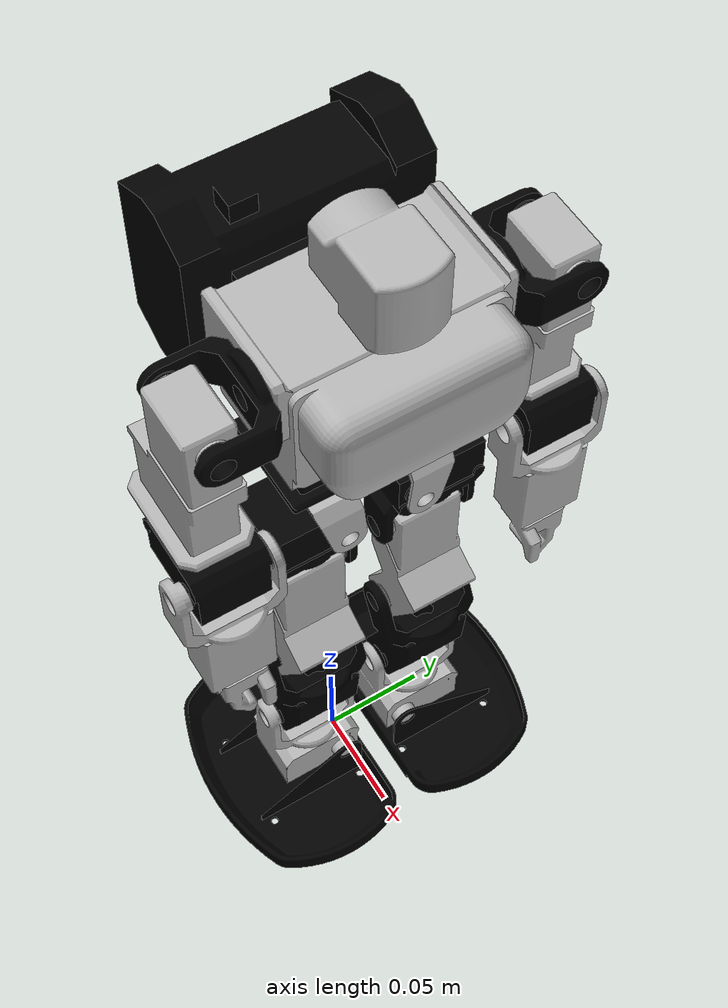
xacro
<?xml version="1.0" ?>
<robot xmlns:xacro="http://www.ros.org/wiki/xacro" name="$(arg robot_name)">
  <xacro:arg name="robot_name" default="khr3"/>
  <xacro:arg name="use_sim" default="false"/>

  <xacro:property name="prefix" value="$(arg robot_name)_"/>

<xacro:include filename="$(find khr3_description)/xacro/materials.xacro" />
<xacro:if value="$(arg use_sim)">
  <xacro:include filename="$(find khr3_description)/xacro/khr3_001.simulation.xacro" />
</xacro:if>

 <!-- Description of robot -->
<link name="${prefix}base_footprint">
  <inertial>
    <origin xyz="0 0 0" rpy="0 0 0"/>
    <mass value="0.001"/>
    <inertia ixx="0.00001" ixy="0.0" ixz="0.0" iyy="0.00001" iyz="0.0" izz="0.00001"/>
  </inertial>
</link>

<link name="${prefix}base_link">
  <inertial>
    <origin xyz="-0.0004860989233068058 0.009532810756286874 0.27413898086600197" rpy="0 0 0"/>
    <mass value="0.13408213174666955"/>
    <inertia ixx="6.3e-05" iyy="3.6e-05" izz="6.8e-05" ixy="0.0" iyz="-0.0" ixz="-0.0"/>
  </inertial>
  <visual>
    <origin xyz="0 0 0" rpy="0 0 0"/>
    <geometry>
      <mesh filename="file://$(find khr3_description)/meshes/base_link.stl" scale="0.001 0.001 0.001"/>
    </geometry>
    <material name="black"/>
  </visual>
  <collision>
    <origin xyz="0 0 0" rpy="0 0 0"/>
    <geometry>
      <mesh filename="file://$(find khr3_description)/meshes/base_link.stl" scale="0.001 0.001 0.001"/>
    </geometry>
  </collision>
</link>

<link name="${prefix}c_chest_c">
  <inertial>
    <origin xyz="-9.07564737343998e-05 -4.299695898109246e-08 0.04371354326547944" rpy="0 0 0"/>
    <mass value="0.1751250442918052"/>
    <inertia ixx="0.000158" iyy="6.6e-05" izz="0.000176" ixy="0.0" iyz="-0.0" ixz="0.0"/>
  </inertial>
  <visual>
    <origin xyz="-0.010956 -0.009542 -0.29475" rpy="0 0 0"/>
    <geometry>
      <mesh filename="file://$(find khr3_description)/meshes/c_chest_c_1.stl" scale="0.001 0.001 0.001"/>
    </geometry>
    <material name="silver"/>
  </visual>
  <collision>
    <origin xyz="-0.010956 -0.009542 -0.29475" rpy="0 0 0"/>
    <geometry>
      <mesh filename="file://$(find khr3_description)/meshes/c_chest_c_1.stl" scale="0.001 0.001 0.001"/>
    </geometry>
  </collision>
</link>

<link name="${prefix}c_chest_b">
  <inertial>
    <origin xyz="-0.027362562372520854 2.840518613928325e-06 0.004477857770456339" rpy="0 0 0"/>
    <mass value="0.08659748664099903"/>
    <inertia ixx="0.000118" iyy="5.2e-05" izz="9.8e-05" ixy="0.0" iyz="0.0" ixz="0.0"/>
  </inertial>
  <visual>
    <origin xyz="0.015044 -0.009542 -0.326" rpy="0 0 0"/>
    <geometry>
      <mesh filename="file://$(find khr3_description)/meshes/c_chest_b_1.stl" scale="0.001 0.001 0.001"/>
    </geometry>
    <material name="black"/>
  </visual>
  <collision>
    <origin xyz="0.015044 -0.009542 -0.326" rpy="0 0 0"/>
    <geometry>
      <mesh filename="file://$(find khr3_description)/meshes/c_chest_b_1.stl" scale="0.001 0.001 0.001"/>
    </geometry>
  </collision>
</link>

<link name="${prefix}c_chest_a">
  <inertial>
    <origin xyz="0.004546800382866728 -4.1161282904669805e-08 -0.0024788373011201403" rpy="0 0 0"/>
    <mass value="0.033763915303500654"/>
    <inertia ixx="3.4e-05" iyy="1.9e-05" izz="3.6e-05" ixy="-0.0" iyz="0.0" ixz="-3e-06"/>
  </inertial>
  <visual>
    <origin xyz="-0.036956 -0.009542 -0.326" rpy="0 0 0"/>
    <geometry>
      <mesh filename="file://$(find khr3_description)/meshes/c_chest_a_1.stl" scale="0.001 0.001 0.001"/>
    </geometry>
    <material name="silver"/>
  </visual>
  <collision>
    <origin xyz="-0.036956 -0.009542 -0.326" rpy="0 0 0"/>
    <geometry>
      <mesh filename="file://$(find khr3_description)/meshes/c_chest_a_1.stl" scale="0.001 0.001 0.001"/>
    </geometry>
  </collision>
</link>

<link name="${prefix}c_head_a">
  <inertial>
    <origin xyz="0.003079433021973575 -4.3073247395913894e-08 0.022888877386975093" rpy="0 0 0"/>
    <mass value="0.012778861662402228"/>
    <inertia ixx="2e-06" iyy="4e-06" izz="3e-06" ixy="-0.0" iyz="0.0" ixz="-0.0"/>
  </inertial>
  <visual>
    <origin xyz="-0.022456 -0.009542 -0.35425" rpy="0 0 0"/>
    <geometry>
      <mesh filename="file://$(find khr3_description)/meshes/c_head_a_1.stl" scale="0.001 0.001 0.001"/>
    </geometry>
    <material name="silver"/>
  </visual>
  <collision>
    <origin xyz="-0.022456 -0.009542 -0.35425" rpy="0 0 0"/>
    <geometry>
      <mesh filename="file://$(find khr3_description)/meshes/c_head_a_1.stl" scale="0.001 0.001 0.001"/>
    </geometry>
  </collision>
</link>

<link name="${prefix}l_shoulder">
  <inertial>
    <origin xyz="0.00016940373751364937 0.008747288709026461 3.2529534621517087e-14" rpy="0 0 0"/>
    <mass value="0.012120367829212707"/>
    <inertia ixx="1e-06" iyy="4e-06" izz="4e-06" ixy="-0.0" iyz="0.0" ixz="0.0"/>
  </inertial>
  <visual>
    <origin xyz="-0.022456 -0.058442 -0.3425" rpy="0 0 0"/>
    <geometry>
      <mesh filename="file://$(find khr3_description)/meshes/l_shoulder_v5_1.stl" scale="0.001 0.001 0.001"/>
    </geometry>
    <material name="black"/>
  </visual>
  <collision>
    <origin xyz="-0.022456 -0.058442 -0.3425" rpy="0 0 0"/>
    <geometry>
      <mesh filename="file://$(find khr3_description)/meshes/l_shoulder_v5_1.stl" scale="0.001 0.001 0.001"/>
    </geometry>
  </collision>
</link>

<link name="${prefix}l_upperarm">
  <inertial>
    <origin xyz="-0.02256531849252991 -4.2996961130414846e-08 -0.03564584515249991" rpy="0 0 0"/>
    <mass value="0.09077338253436838"/>
    <inertia ixx="5.4e-05" iyy="6.4e-05" izz="1.8e-05" ixy="0.0" iyz="0.0" ixz="-1e-05"/>
  </inertial>
  <visual>
    <origin xyz="-0.038206 -0.083442 -0.3425" rpy="0 0 0"/>
    <geometry>
      <mesh filename="file://$(find khr3_description)/meshes/l_upperarm_v4_1.stl" scale="0.001 0.001 0.001"/>
    </geometry>
    <material name="silver"/>
  </visual>
  <collision>
    <origin xyz="-0.038206 -0.083442 -0.3425" rpy="0 0 0"/>
    <geometry>
      <mesh filename="file://$(find khr3_description)/meshes/l_upperarm_v4_1.stl" scale="0.001 0.001 0.001"/>
    </geometry>
  </collision>
</link>

<link name="${prefix}l_elbow">
  <inertial>
    <origin xyz="5.745484729775818e-05 -4.299695875731313e-08 -0.012574921301198305" rpy="0 0 0"/>
    <mass value="0.044771268874731644"/>
    <inertia ixx="6e-06" iyy="8e-06" izz="1e-05" ixy="0.0" iyz="-0.0" ixz="0.0"/>
  </inertial>
  <visual>
    <origin xyz="-0.022206 -0.083442 -0.27075" rpy="0 0 0"/>
    <geometry>
      <mesh filename="file://$(find khr3_description)/meshes/l_elbow_v4_1.stl" scale="0.001 0.001 0.001"/>
    </geometry>
    <material name="black"/>
  </visual>
  <collision>
    <origin xyz="-0.022206 -0.083442 -0.27075" rpy="0 0 0"/>
    <geometry>
      <mesh filename="file://$(find khr3_description)/meshes/l_elbow_v4_1.stl" scale="0.001 0.001 0.001"/>
    </geometry>
  </collision>
</link>

<link name="${prefix}l_lowerarm">
  <inertial>
    <origin xyz="0.00017641899363149416 -0.0156924274010031 -0.04569649848488025" rpy="0 0 0"/>
    <mass value="0.02983803452815617"/>
    <inertia ixx="1.8e-05" iyy="1.6e-05" izz="4e-06" ixy="0.0" iyz="-0.0" ixz="0.0"/>
  </inertial>
  <visual>
    <origin xyz="-0.033706 -0.099692 -0.25625" rpy="0 0 0"/>
    <geometry>
      <mesh filename="file://$(find khr3_description)/meshes/l_lowerarm_v7_1.stl" scale="0.001 0.001 0.001"/>
    </geometry>
    <material name="silver"/>
  </visual>
  <collision>
    <origin xyz="-0.033706 -0.099692 -0.25625" rpy="0 0 0"/>
    <geometry>
      <mesh filename="file://$(find khr3_description)/meshes/l_lowerarm_v7_1.stl" scale="0.001 0.001 0.001"/>
    </geometry>
  </collision>
</link>

<link name="${prefix}r_shoulder">
  <inertial>
    <origin xyz="0.00016940373733528857 -0.008747374702943796 5.306866057708248e-14" rpy="0 0 0"/>
    <mass value="0.01212036782921271"/>
    <inertia ixx="1e-06" iyy="4e-06" izz="4e-06" ixy="0.0" iyz="0.0" ixz="-0.0"/>
  </inertial>
  <visual>
    <origin xyz="-0.022456 0.039358 -0.3425" rpy="0 0 0"/>
    <geometry>
      <mesh filename="file://$(find khr3_description)/meshes/r_shoulder_v4_1.stl" scale="0.001 0.001 0.001"/>
    </geometry>
    <material name="black"/>
  </visual>
  <collision>
    <origin xyz="-0.022456 0.039358 -0.3425" rpy="0 0 0"/>
    <geometry>
      <mesh filename="file://$(find khr3_description)/meshes/r_shoulder_v4_1.stl" scale="0.001 0.001 0.001"/>
    </geometry>
  </collision>
</link>

<link name="${prefix}r_upperarm">
  <inertial>
    <origin xyz="-0.022565318492529688 -4.2996961074903695e-08 -0.03564584515249991" rpy="0 0 0"/>
    <mass value="0.09077338253436838"/>
    <inertia ixx="5.4e-05" iyy="6.4e-05" izz="1.8e-05" ixy="0.0" iyz="0.0" ixz="-1e-05"/>
  </inertial>
  <visual>
    <origin xyz="-0.038206 0.064358 -0.3425" rpy="0 0 0"/>
    <geometry>
      <mesh filename="file://$(find khr3_description)/meshes/r_upperarm_v3_1.stl" scale="0.001 0.001 0.001"/>
    </geometry>
    <material name="silver"/>
  </visual>
  <collision>
    <origin xyz="-0.038206 0.064358 -0.3425" rpy="0 0 0"/>
    <geometry>
      <mesh filename="file://$(find khr3_description)/meshes/r_upperarm_v3_1.stl" scale="0.001 0.001 0.001"/>
    </geometry>
  </collision>
</link>

<link name="${prefix}r_elbow">
  <inertial>
    <origin xyz="5.7454847330103836e-05 -4.2996958674046404e-08 -0.012574921301198305" rpy="0 0 0"/>
    <mass value="0.044771268874731526"/>
    <inertia ixx="6e-06" iyy="8e-06" izz="1e-05" ixy="0.0" iyz="-0.0" ixz="0.0"/>
  </inertial>
  <visual>
    <origin xyz="-0.022206 0.064358 -0.27075" rpy="0 0 0"/>
    <geometry>
      <mesh filename="file://$(find khr3_description)/meshes/r_elbow_v4_1.stl" scale="0.001 0.001 0.001"/>
    </geometry>
    <material name="black"/>
  </visual>
  <collision>
    <origin xyz="-0.022206 0.064358 -0.27075" rpy="0 0 0"/>
    <geometry>
      <mesh filename="file://$(find khr3_description)/meshes/r_elbow_v4_1.stl" scale="0.001 0.001 0.001"/>
    </geometry>
  </collision>
</link>

<link name="${prefix}r_lowerarm">
  <inertial>
    <origin xyz="0.00017641899364317232 0.01569234140705124 -0.04569649848495705" rpy="0 0 0"/>
    <mass value="0.029838034528201704"/>
    <inertia ixx="1.8e-05" iyy="1.6e-05" izz="4e-06" ixy="-0.0" iyz="0.0" ixz="0.0"/>
  </inertial>
  <visual>
    <origin xyz="-0.033706 0.080608 -0.25625" rpy="0 0 0"/>
    <geometry>
      <mesh filename="file://$(find khr3_description)/meshes/r_lowerarm_v5_1.stl" scale="0.001 0.001 0.001"/>
    </geometry>
    <material name="silver"/>
  </visual>
  <collision>
    <origin xyz="-0.033706 0.080608 -0.25625" rpy="0 0 0"/>
    <geometry>
      <mesh filename="file://$(find khr3_description)/meshes/r_lowerarm_v5_1.stl" scale="0.001 0.001 0.001"/>
    </geometry>
  </collision>
</link>

<link name="${prefix}l_hipjointupper">
  <inertial>
    <origin xyz="3.293764515496962e-05 -0.0011113374509284651 -0.007400199793976242" rpy="0 0 0"/>
    <mass value="0.005702042499396512"/>
    <inertia ixx="1e-06" iyy="2e-06" izz="2e-06" ixy="0.0" iyz="-0.0" ixz="0.0"/>
  </inertial>
  <visual>
    <origin xyz="-0.010956 -0.031242 -0.25575" rpy="0 0 0"/>
    <geometry>
      <mesh filename="file://$(find khr3_description)/meshes/l_hipjointupper_v4_1.stl" scale="0.001 0.001 0.001"/>
    </geometry>
    <material name="silver"/>
  </visual>
  <collision>
    <origin xyz="-0.010956 -0.031242 -0.25575" rpy="0 0 0"/>
    <geometry>
      <mesh filename="file://$(find khr3_description)/meshes/l_hipjointupper_v4_1.stl" scale="0.001 0.001 0.001"/>
    </geometry>
  </collision>
</link>

<link name="${prefix}l_hipjointlower">
  <inertial>
    <origin xyz="-0.016250242301438553 0.011463181378816707 -0.0066539419866288585" rpy="0 0 0"/>
    <mass value="0.06689532645492419"/>
    <inertia ixx="2e-05" iyy="1.4e-05" izz="1.5e-05" ixy="0.0" iyz="0.0" ixz="-0.0"/>
  </inertial>
  <visual>
    <origin xyz="-0.027656 -0.027242 -0.233" rpy="0 0 0"/>
    <geometry>
      <mesh filename="file://$(find khr3_description)/meshes/l_hipjointlower_v4_1.stl" scale="0.001 0.001 0.001"/>
    </geometry>
    <material name="black"/>
  </visual>
  <collision>
    <origin xyz="-0.027656 -0.027242 -0.233" rpy="0 0 0"/>
    <geometry>
      <mesh filename="file://$(find khr3_description)/meshes/l_hipjointlower_v4_1.stl" scale="0.001 0.001 0.001"/>
    </geometry>
  </collision>
</link>

<link name="${prefix}l_upperreg">
  <inertial>
    <origin xyz="0.002589780466551929 -0.016500042996958703 -0.03375567398425394" rpy="0 0 0"/>
    <mass value="0.09097466003274825"/>
    <inertia ixx="5.9e-05" iyy="5.6e-05" izz="1.3e-05" ixy="0.0" iyz="0.0" ixz="4e-06"/>
  </inertial>
  <visual>
    <origin xyz="-0.011406 -0.054742 -0.1935" rpy="0 0 0"/>
    <geometry>
      <mesh filename="file://$(find khr3_description)/meshes/l_upperreg_v3_1.stl" scale="0.001 0.001 0.001"/>
    </geometry>
    <material name="silver"/>
  </visual>
  <collision>
    <origin xyz="-0.011406 -0.054742 -0.1935" rpy="0 0 0"/>
    <geometry>
      <mesh filename="file://$(find khr3_description)/meshes/l_upperreg_v3_1.stl" scale="0.001 0.001 0.001"/>
    </geometry>
  </collision>
</link>

<link name="${prefix}l_lowerreg">
  <inertial>
    <origin xyz="0.0044805681524230055 -0.015970110512676966 -0.04182100713444817" rpy="0 0 0"/>
    <mass value="0.06094435150357522"/>
    <inertia ixx="2.9e-05" iyy="2.6e-05" izz="1.1e-05" ixy="0.0" iyz="-0.0" ixz="-5e-06"/>
  </inertial>
  <visual>
    <origin xyz="-0.011406 -0.054742 -0.1285" rpy="0 0 0"/>
    <geometry>
      <mesh filename="file://$(find khr3_description)/meshes/l_lowerreg_v5_1.stl" scale="0.001 0.001 0.001"/>
    </geometry>
    <material name="black"/>
  </visual>
  <collision>
    <origin xyz="-0.011406 -0.054742 -0.1285" rpy="0 0 0"/>
    <geometry>
      <mesh filename="file://$(find khr3_description)/meshes/l_lowerreg_v5_1.stl" scale="0.001 0.001 0.001"/>
    </geometry>
  </collision>
</link>

<link name="${prefix}l_ankle">
  <inertial>
    <origin xyz="0.0001886240331466279 -0.01666391069306302 -0.03292964719213733" rpy="0 0 0"/>
    <mass value="0.06757551562559608"/>
    <inertia ixx="2e-05" iyy="1.4e-05" izz="1.6e-05" ixy="0.0" iyz="-0.0" ixz="0.0"/>
  </inertial>
  <visual>
    <origin xyz="-0.008043 -0.055242 -0.063587" rpy="0 0 0"/>
    <geometry>
      <mesh filename="file://$(find khr3_description)/meshes/l_ankle_v5_1.stl" scale="0.001 0.001 0.001"/>
    </geometry>
    <material name="silver"/>
  </visual>
  <collision>
    <origin xyz="-0.008043 -0.055242 -0.063587" rpy="0 0 0"/>
    <geometry>
      <mesh filename="file://$(find khr3_description)/meshes/l_ankle_v5_1.stl" scale="0.001 0.001 0.001"/>
    </geometry>
  </collision>
</link>

<link name="${prefix}l_foot">
  <inertial>
    <origin xyz="-0.020700151207673705 0.023895172544662873 -0.021244534057561063" rpy="0 0 0"/>
    <mass value="0.03847104970565043"/>
    <inertia ixx="2.3e-05" iyy="4.8e-05" izz="6.9e-05" ixy="-0.0" iyz="0.0" ixz="0.0"/>
  </inertial>
  <visual>
    <origin xyz="-0.027793 -0.027242 -0.024087" rpy="0 0 0"/>
    <geometry>
      <mesh filename="file://$(find khr3_description)/meshes/l_foot_v3_1.stl" scale="0.001 0.001 0.001"/>
    </geometry>
    <material name="black"/>
  </visual>
  <collision>
    <origin xyz="-0.027793 -0.027242 -0.024087" rpy="0 0 0"/>
    <geometry>
      <mesh filename="file://$(find khr3_description)/meshes/l_foot_v3_1.stl" scale="0.001 0.001 0.001"/>
    </geometry>
  </collision>
</link>

<link name="${prefix}r_hipjointupper">
  <inertial>
    <origin xyz="3.2937645155054623e-05 0.0011112514569246185 -0.007400199793976325" rpy="0 0 0"/>
    <mass value="0.005702042499396526"/>
    <inertia ixx="1e-06" iyy="2e-06" izz="2e-06" ixy="-0.0" iyz="0.0" ixz="0.0"/>
  </inertial>
  <visual>
    <origin xyz="-0.010956 0.012158 -0.25575" rpy="0 0 0"/>
    <geometry>
      <mesh filename="file://$(find khr3_description)/meshes/r_hipjointupper_v4_1.stl" scale="0.001 0.001 0.001"/>
    </geometry>
    <material name="silver"/>
  </visual>
  <collision>
    <origin xyz="-0.010956 0.012158 -0.25575" rpy="0 0 0"/>
    <geometry>
      <mesh filename="file://$(find khr3_description)/meshes/r_hipjointupper_v4_1.stl" scale="0.001 0.001 0.001"/>
    </geometry>
  </collision>
</link>

<link name="${prefix}r_hipjointlower">
  <inertial>
    <origin xyz="-0.016250242301436166 -0.011463267372574608 -0.006653941986625556" rpy="0 0 0"/>
    <mass value="0.0668953264549242"/>
    <inertia ixx="2e-05" iyy="1.4e-05" izz="1.5e-05" ixy="0.0" iyz="-0.0" ixz="0.0"/>
  </inertial>
  <visual>
    <origin xyz="-0.027656 0.008158 -0.233" rpy="0 0 0"/>
    <geometry>
      <mesh filename="file://$(find khr3_description)/meshes/r_hipjointlower_v4_1.stl" scale="0.001 0.001 0.001"/>
    </geometry>
    <material name="black"/>
  </visual>
  <collision>
    <origin xyz="-0.027656 0.008158 -0.233" rpy="0 0 0"/>
    <geometry>
      <mesh filename="file://$(find khr3_description)/meshes/r_hipjointlower_v4_1.stl" scale="0.001 0.001 0.001"/>
    </geometry>
  </collision>
</link>

<link name="${prefix}r_upperreg">
  <inertial>
    <origin xyz="0.0025897804665520278 0.016499957003041386 -0.03375567398425397" rpy="0 0 0"/>
    <mass value="0.09097466003274823"/>
    <inertia ixx="5.9e-05" iyy="5.6e-05" izz="1.3e-05" ixy="-0.0" iyz="0.0" ixz="4e-06"/>
  </inertial>
  <visual>
    <origin xyz="-0.011406 0.035658 -0.1935" rpy="0 0 0"/>
    <geometry>
      <mesh filename="file://$(find khr3_description)/meshes/r_upperreg_v3_1.stl" scale="0.001 0.001 0.001"/>
    </geometry>
    <material name="silver"/>
  </visual>
  <collision>
    <origin xyz="-0.011406 0.035658 -0.1935" rpy="0 0 0"/>
    <geometry>
      <mesh filename="file://$(find khr3_description)/meshes/r_upperreg_v3_1.stl" scale="0.001 0.001 0.001"/>
    </geometry>
  </collision>
</link>

<link name="${prefix}r_lowerreg">
  <inertial>
    <origin xyz="0.004480568152423165 0.01597002451875967 -0.04182100713444818" rpy="0 0 0"/>
    <mass value="0.06094435150357523"/>
    <inertia ixx="2.9e-05" iyy="2.6e-05" izz="1.1e-05" ixy="-0.0" iyz="0.0" ixz="-5e-06"/>
  </inertial>
  <visual>
    <origin xyz="-0.011406 0.035658 -0.1285" rpy="0 0 0"/>
    <geometry>
      <mesh filename="file://$(find khr3_description)/meshes/r_lowerreg_v5_1.stl" scale="0.001 0.001 0.001"/>
    </geometry>
    <material name="black"/>
  </visual>
  <collision>
    <origin xyz="-0.011406 0.035658 -0.1285" rpy="0 0 0"/>
    <geometry>
      <mesh filename="file://$(find khr3_description)/meshes/r_lowerreg_v5_1.stl" scale="0.001 0.001 0.001"/>
    </geometry>
  </collision>
</link>

<link name="${prefix}r_ankle">
  <inertial>
    <origin xyz="0.00018862403314765484 0.01666382469921859 -0.03292964719213813" rpy="0 0 0"/>
    <mass value="0.06757551562559609"/>
    <inertia ixx="2e-05" iyy="1.4e-05" izz="1.6e-05" ixy="-0.0" iyz="0.0" ixz="0.0"/>
  </inertial>
  <visual>
    <origin xyz="-0.008043 0.036158 -0.063587" rpy="0 0 0"/>
    <geometry>
      <mesh filename="file://$(find khr3_description)/meshes/r_ankle_v5_1.stl" scale="0.001 0.001 0.001"/>
    </geometry>
    <material name="silver"/>
  </visual>
  <collision>
    <origin xyz="-0.008043 0.036158 -0.063587" rpy="0 0 0"/>
    <geometry>
      <mesh filename="file://$(find khr3_description)/meshes/r_ankle_v5_1.stl" scale="0.001 0.001 0.001"/>
    </geometry>
  </collision>
</link>

<link name="${prefix}r_foot">
  <inertial>
    <origin xyz="-0.020700151207566492 -0.023895258538579878 -0.02124453405755709" rpy="0 0 0"/>
    <mass value="0.03847104970565037"/>
    <inertia ixx="2.3e-05" iyy="4.8e-05" izz="6.9e-05" ixy="-0.0" iyz="-0.0" ixz="-0.0"/>
  </inertial>
  <visual>
    <origin xyz="-0.027793 0.008158 -0.024087" rpy="0 0 0"/>
    <geometry>
      <mesh filename="file://$(find khr3_description)/meshes/r_foot_v3_1.stl" scale="0.001 0.001 0.001"/>
    </geometry>
    <material name="black"/>
  </visual>
  <collision>
    <origin xyz="-0.027793 0.008158 -0.024087" rpy="0 0 0"/>
    <geometry>
      <mesh filename="file://$(find khr3_description)/meshes/r_foot_v3_1.stl" scale="0.001 0.001 0.001"/>
    </geometry>
  </collision>
</link>

 <!-- continuous <-> revolute -->

<joint name="${prefix}floating_joint" type="fixed">
  <parent link="${prefix}base_footprint"/>
  <child link="${prefix}base_link"/>
  <origin rpy="0 0 0" xyz="0 0 0"/>
</joint>

<joint name="${prefix}c_chest_yaw" type="continuous">
  <origin xyz="0.010956 0.009542 0.29475" rpy="0 0 0"/>
  <parent link="${prefix}base_link"/>
  <child link="${prefix}c_chest_c"/>
  <stiffness>30000.0</stiffness>
  <damping>0.0</damping>
  <axis xyz="0.0 -0.0 1.0"/>
  <limit effort="1000" lower="${radians(-90)}" upper="${radians(90)}" velocity="100.0"/>
</joint>

<joint name="${prefix}intrgration_01" type="fixed">
  <origin xyz="-0.026 0.0 0.03125" rpy="0 0 0"/>
  <parent link="${prefix}c_chest_c"/>
  <child link="${prefix}c_chest_b"/>
</joint>

<joint name="${prefix}intrgration_02" type="fixed">
  <origin xyz="0.026 0.0 0.03125" rpy="0 0 0"/>
  <parent link="${prefix}c_chest_c"/>
  <child link="${prefix}c_chest_a"/>
</joint>

<joint name="${prefix}l_shoulder_pitch" type="continuous">
  <origin xyz="0.0115 0.0489 0.04775" rpy="0 0 0"/>
  <parent link="${prefix}c_chest_c"/>
  <child link="${prefix}l_shoulder"/>
  <stiffness>30000.0</stiffness>
  <damping>0.0</damping>
  <axis xyz="-0.0 1.0 0.0"/>
  <limit effort="1000" lower="${radians(-90)}" upper="${radians(90)}" velocity="100.0"/>
</joint>

<joint name="${prefix}l_shoulder_roll" type="continuous">
  <origin xyz="0.01575 0.025 0.0" rpy="0 0 0"/>
  <parent link="${prefix}l_shoulder"/>
  <child link="${prefix}l_upperarm"/>
  <stiffness>30000.0</stiffness>
  <damping>0.0</damping>
  <axis xyz="1.0 -0.0 0.0"/>
  <limit effort="1000" lower="${radians(-90)}" upper="${radians(90)}" velocity="100.0"/>
</joint>

<joint name="${prefix}l_elbow_yaw" type="continuous">
  <origin xyz="-0.016 0.0 -0.07175" rpy="0 0 0"/>
  <parent link="${prefix}l_upperarm"/>
  <child link="${prefix}l_elbow"/>
  <stiffness>30000.0</stiffness>
  <damping>0.0</damping>
  <axis xyz="-0.0 -0.0 1.0"/>
  <limit effort="1000" lower="${radians(-90)}" upper="${radians(90)}" velocity="100.0"/>
</joint>

<joint name="${prefix}l_elbow_pitch" type="continuous">
  <origin xyz="0.0115 0.01625 -0.0145" rpy="0 0 0"/>
  <parent link="${prefix}l_elbow"/>
  <child link="${prefix}l_lowerarm"/>
  <stiffness>30000.0</stiffness>
  <damping>0.0</damping>
  <axis xyz="-0.0 1.0 0.0"/>
  <limit effort="1000" lower="${radians(-90)}" upper="${radians(90)}" velocity="100.0"/>
</joint>

<joint name="${prefix}l_hipjoint_yaw" type="continuous">
  <origin xyz="0.010956 0.031242 0.25575" rpy="0 0 0"/>
  <parent link="${prefix}base_link"/>
  <child link="${prefix}l_hipjointupper"/>
  <stiffness>30000.0</stiffness>
  <damping>0.0</damping>
  <axis xyz="-0.0 0.0 1.0"/>
  <limit effort="1000" lower="${radians(-90)}" upper="${radians(90)}" velocity="100.0"/>
</joint>

<joint name="${prefix}l_hipjoint_roll" type="continuous">
  <origin xyz="0.0167 -0.004 -0.02275" rpy="0 0 0"/>
  <parent link="${prefix}l_hipjointupper"/>
  <child link="${prefix}l_hipjointlower"/>
  <stiffness>30000.0</stiffness>
  <damping>0.0</damping>
  <axis xyz="1.0 0.0 -0.0"/>
  <limit effort="1000" lower="${radians(-90)}" upper="${radians(90)}" velocity="100.0"/>
</joint>

<joint name="${prefix}l_hipjoint_pitch" type="continuous">
  <origin xyz="-0.01625 0.0275 -0.0395" rpy="0 0 0"/>
  <parent link="${prefix}l_hipjointlower"/>
  <child link="${prefix}l_upperreg"/>
  <stiffness>30000.0</stiffness>
  <damping>0.0</damping>
  <axis xyz="-0.0 1.0 0.0"/>
  <limit effort="1000" lower="${radians(-90)}" upper="${radians(90)}" velocity="100.0"/>
</joint>

<joint name="${prefix}l_knee_pitch" type="continuous">
  <origin xyz="0.0 0.0 -0.065" rpy="0 0 0"/>
  <parent link="${prefix}l_upperreg"/>
  <child link="${prefix}l_lowerreg"/>
  <stiffness>30000.0</stiffness>
  <damping>0.0</damping>
  <axis xyz="-0.0 1.0 0.0"/>
  <limit effort="1000" lower="${radians(-90)}" upper="${radians(90)}" velocity="100.0"/>
</joint>

<joint name="${prefix}l_ankle_pitch" type="continuous">
  <origin xyz="-0.003363 0.0005 -0.064913" rpy="0 0 0"/>
  <parent link="${prefix}l_lowerreg"/>
  <child link="${prefix}l_ankle"/>
  <stiffness>30000.0</stiffness>
  <damping>0.0</damping>
  <axis xyz="0.0 1.0 0.0"/>
  <limit effort="1000" lower="${radians(-90)}" upper="${radians(90)}" velocity="100.0"/>
</joint>

<joint name="${prefix}l_ankle_roll" type="continuous">
  <origin xyz="0.01975 -0.028 -0.0395" rpy="0 0 0"/>
  <parent link="${prefix}l_ankle"/>
  <child link="${prefix}l_foot"/>
  <stiffness>30000.0</stiffness>
  <damping>0.0</damping>
  <axis xyz="1.0 -0.0 -0.0"/>
  <limit effort="1000" lower="${radians(-90)}" upper="${radians(90)}" velocity="100.0"/>
</joint>

<joint name="${prefix}c_head_yaw" type="continuous">
  <origin xyz="0.0115 0.0 0.0595" rpy="0 0 0"/>
  <parent link="${prefix}c_chest_c"/>
  <child link="${prefix}c_head_a"/>
  <stiffness>30000.0</stiffness>
  <damping>0.0</damping>
  <axis xyz="0.0 -0.0 1.0"/>
  <limit effort="1000" lower="${radians(-90)}" upper="${radians(90)}" velocity="100.0"/>
</joint>

<joint name="${prefix}r_shoulder_pitch" type="continuous">
  <origin xyz="0.0115 -0.0489 0.04775" rpy="0 0 0"/>
  <parent link="${prefix}c_chest_c"/>
  <child link="${prefix}r_shoulder"/>
  <stiffness>30000.0</stiffness>
  <damping>0.0</damping>
  <axis xyz="0.0 1.0 -0.0"/>
  <limit effort="1000" lower="${radians(-90)}" upper="${radians(90)}" velocity="100.0"/>
</joint>

<joint name="${prefix}r_shoulder_roll" type="continuous">
  <origin xyz="0.01575 -0.025 0.0" rpy="0 0 0"/>
  <parent link="${prefix}r_shoulder"/>
  <child link="${prefix}r_upperarm"/>
  <stiffness>30000.0</stiffness>
  <damping>0.0</damping>
  <axis xyz="-1.0 0.0 0.0"/>
  <limit effort="1000" lower="${radians(-90)}" upper="${radians(90)}" velocity="100.0"/>
</joint>

<joint name="${prefix}r_elbow_yaw" type="continuous">
  <origin xyz="-0.016 0.0 -0.07175" rpy="0 0 0"/>
  <parent link="${prefix}r_upperarm"/>
  <child link="${prefix}r_elbow"/>
  <stiffness>30000.0</stiffness>
  <damping>0.0</damping>
  <axis xyz="-0.0 0.0 -1.0"/>
  <limit effort="1000" lower="${radians(-90)}" upper="${radians(90)}" velocity="100.0"/>
</joint>

<joint name="${prefix}r_elbow_pitch" type="continuous">
  <origin xyz="0.0115 -0.01625 -0.0145" rpy="0 0 0"/>
  <parent link="${prefix}r_elbow"/>
  <child link="${prefix}r_lowerarm"/>
  <stiffness>30000.0</stiffness>
  <damping>0.0</damping>
  <axis xyz="-0.0 1.0 -0.0"/>
  <limit effort="1000" lower="${radians(-90)}" upper="${radians(90)}" velocity="100.0"/>
</joint>

<joint name="${prefix}r_hipjoint_yaw" type="continuous">
  <origin xyz="0.010956 -0.012158 0.25575" rpy="0 0 0"/>
  <parent link="${prefix}base_link"/>
  <child link="${prefix}r_hipjointupper"/>
  <stiffness>30000.0</stiffness>
  <damping>0.0</damping>
  <axis xyz="-0.0 0.0 -1.0"/>
  <limit effort="1000" lower="${radians(-90)}" upper="${radians(90)}" velocity="100.0"/>
</joint>

<joint name="${prefix}r_hipjoint_roll" type="continuous">
  <origin xyz="0.0167 0.004 -0.02275" rpy="0 0 0"/>
  <parent link="${prefix}r_hipjointupper"/>
  <child link="${prefix}r_hipjointlower"/>
  <stiffness>30000.0</stiffness>
  <damping>0.0</damping>
  <axis xyz="-1.0 0.0 0.0"/>
  <limit effort="1000" lower="${radians(-90)}" upper="${radians(90)}" velocity="100.0"/>
</joint>

<joint name="${prefix}r_hipjoint_pitch" type="continuous">
  <origin xyz="-0.01625 -0.0275 -0.0395" rpy="0 0 0"/>
  <parent link="${prefix}r_hipjointlower"/>
  <child link="${prefix}r_upperreg"/>
  <stiffness>30000.0</stiffness>
  <damping>0.0</damping>
  <axis xyz="0.0 1.0 0.0"/>
  <limit effort="1000" lower="${radians(-90)}" upper="${radians(90)}" velocity="100.0"/>
</joint>

<joint name="${prefix}r_knee_pitch" type="continuous">
  <origin xyz="0.0 0.0 -0.065" rpy="0 0 0"/>
  <parent link="${prefix}r_upperreg"/>
  <child link="${prefix}r_lowerreg"/>
  <stiffness>30000.0</stiffness>
  <damping>0.0</damping>
  <axis xyz="-0.0 1.0 -0.0"/>
  <limit effort="1000" lower="${radians(-90)}" upper="${radians(90)}" velocity="100.0"/>
</joint>

<joint name="${prefix}r_ankle_pitch" type="continuous">
  <origin xyz="-0.003363 -0.0005 -0.064913" rpy="0 0 0"/>
  <parent link="${prefix}r_lowerreg"/>
  <child link="${prefix}r_ankle"/>
  <stiffness>30000.0</stiffness>
  <damping>0.0</damping>
  <axis xyz="0.0 1.0 -0.0"/>
  <limit effort="1000" lower="${radians(-90)}" upper="${radians(90)}" velocity="100.0"/>
</joint>

<joint name="${prefix}r_ankle_roll" type="continuous">
  <origin xyz="0.01975 0.028 -0.0395" rpy="0 0 0"/>
  <parent link="${prefix}r_ankle"/>
  <child link="${prefix}r_foot"/>
  <stiffness>30000.0</stiffness>
  <damping>0.0</damping>
  <axis xyz="-1.0 0.0 0.0"/>
  <limit effort="1000" lower="${radians(-90)}" upper="${radians(90)}" velocity="100.0"/>
</joint>

<xacro:if value="$(arg use_sim)">
  <xacro:khr3_simulation name="$(arg robot_name)" prefix="${prefix}"/>
</xacro:if>

</robot>

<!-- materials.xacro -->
<robot name="khr3_001" xmlns:xacro="http://www.ros.org/wiki/xacro" >

<material name="silver">
  <color rgba="0.700 0.700 0.700 1.000"/>
</material>

<material name="white">
        <color rgba="1.0 1.0 1.0 1.0"/>
    </material>

<material name="black">
        <color rgba="0.0 0.0 0.0 1.0"/>
    </material>
</robot>
